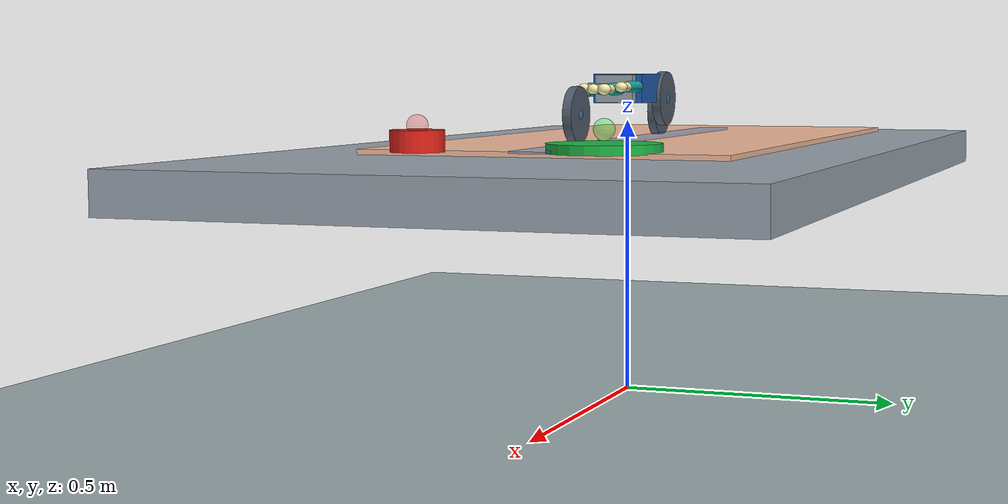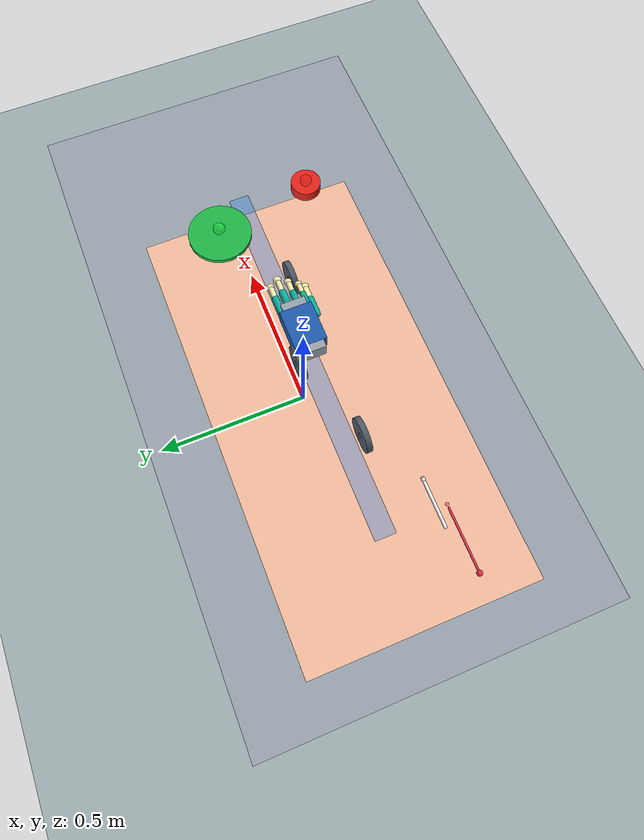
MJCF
<mujoco model="micro_suture_lab_v5">
  <compiler angle="degree" autolimits="true"/>
  <option timestep="0.001" gravity="0 0 -9.81" integrator="implicitfast" cone="elliptic" impratio="3">
    <flag contact="enable" energy="enable" multiccd="enable"/>
  </option>

  <visual>
    <global offwidth="1280" offheight="720"/>
    <quality shadowsize="4096"/>
    <headlight ambient="0.42 0.42 0.42" diffuse="0.72 0.72 0.72" specular="0.25 0.25 0.25"/>
  </visual>

  <asset>
    <texture name="grid" type="2d" builtin="checker" rgb1="0.76 0.80 0.80" rgb2="0.48 0.56 0.58" width="256" height="256"/>
    <material name="floor_mat" texture="grid" texrepeat="6 6" reflectance="0.08"/>
    <material name="steel"  rgba="0.60 0.64 0.68 1" specular="0.55"/>
    <material name="palm"   rgba="0.12 0.36 0.68 1"/>
    <material name="finger" rgba="0.04 0.68 0.62 1"/>
    <material name="pad"    rgba="0.98 0.95 0.68 1"/>
    <material name="needle" rgba="0.92 0.95 0.98 1" specular="0.85"/>
    <material name="thread" rgba="0.94 0.18 0.30 1"/>
    <material name="gel"    rgba="0.96 0.74 0.62 1"/>
    <material name="target" rgba="0.12 0.72 0.28 1"/>
    <material name="alert"  rgba="0.90 0.14 0.10 1"/>
    <material name="ring"   rgba="0.32 0.36 0.42 1"/>
    <material name="zone"   rgba="0.18 0.50 0.90 0.38"/>
  </asset>

  <default>
    <default class="pad">
      <geom condim="6" friction="3.2 0.20 0.10"
            solref="0.002 0.5" solimp="0.99 0.999 0.0005"
            margin="0.0005" gap="0"/>
    </default>
    <default class="finger_link">
      <geom condim="4" friction="2.0 0.05 0.01"
            solref="0.004 1" solimp="0.97 0.995 0.001"/>
    </default>
    <default class="needle_part">
      <geom condim="6" friction="2.8 0.18 0.10"
            solref="0.003 1" solimp="0.97 0.999 0.0005"/>
    </default>
    <default class="thread_part">
      <geom condim="4" friction="1.4 0.05 0.02"
            solref="0.006 1" solimp="0.9  0.98 0.001"/>
    </default>
  </default>

  <worldbody>
    <light pos="0 -0.8 2.2" dir="0.15 0.25 -1" diffuse="0.82 0.82 0.82"/>
    <light pos="-0.8 0.6 1.4" dir="0.6 -0.4 -1" diffuse="0.34 0.37 0.42"/>
    <geom name="floor" type="plane" size="1.7 1.25 0.05" material="floor_mat"/>

    <body name="bench" pos="0 0 0.42">
      <geom name="bench_top"    type="box" size="0.94 0.50 0.035" material="steel"/>
      <geom name="sterile_pad"  type="box" pos="-0.18 0 0.038" size="0.64 0.32 0.006" material="gel"/>
      <geom name="safe_corridor" type="box" pos="-0.03 0.005 0.046" size="0.55 0.030 0.002"
            material="zone" contype="0" conaffinity="0"/>
    </body>

    <body name="entry_hoop"  pos="-0.32 -0.040 0.510">
      <geom name="entry_ring"  type="cylinder" fromto="0 -0.008 0 0 0.008 0" size="0.050" material="ring" contype="0" conaffinity="0"/>
      <site name="entry_site"  pos="0 0 0" size="0.012" rgba="0.1 0.7 1 0.35"/>
    </body>
    <body name="middle_hoop" pos="-0.08  0.045 0.540">
      <geom name="middle_ring" type="cylinder" fromto="0 -0.008 0 0 0.008 0" size="0.050" material="ring" contype="0" conaffinity="0"/>
      <site name="middle_site" pos="0 0 0" size="0.012" rgba="0.1 0.7 1 0.35"/>
    </body>
    <body name="exit_hoop"   pos=" 0.18 -0.035 0.515">
      <geom name="exit_ring"   type="cylinder" fromto="0 -0.008 0 0 0.008 0" size="0.050" material="ring" contype="0" conaffinity="0"/>
      <site name="exit_site"   pos="0 0 0" size="0.012" rgba="0.1 0.7 1 0.35"/>
    </body>

    <body name="target_tray" pos="0.42 0.10 0.470">
      <geom name="target_plate" type="cylinder" size="0.095 0.008" material="target"/>
      <site name="tray_site" pos="0 0 0.030" size="0.018" rgba="0.1 1 0.2 0.35"/>
    </body>

    <body name="verify_button" pos="0.48 -0.20 0.480">
      <joint name="button_slide" type="slide" axis="0 0 -1" range="-0.035 0" damping="1.5" stiffness="50" springref="0"/>
      <geom  name="button_geom"  type="cylinder" size="0.045 0.018" material="alert"/>
      <site  name="button_site"  pos="0 0 0.025" size="0.018" rgba="1 0.1 0.1 0.25"/>
    </body>

    <body name="needle" pos="-0.56 -0.13 0.54">
      <freejoint name="needle_free"/>
      <inertial pos="0 0 0" mass="0.006" diaginertia="6e-7 3e-6 3e-6"/>
      <geom name="needle_shaft" class="needle_part" type="capsule" fromto="-0.060 0 0 0.060 0 0" size="0.0045" material="needle"/>
      <geom name="needle_tip"   class="needle_part" type="sphere"  pos="0.068 0 0" size="0.0060" material="needle"/>
      <site name="needle_tip_site"  pos="0.072 0 0" size="0.005" rgba="1 1 1 0.45"/>
      <site name="needle_grip_site" pos="0.000 0 0" size="0.005" rgba="0 1 1 0.0"/>
    </body>

    <body name="suture_tail" pos="-0.66 -0.16 0.535">
      <freejoint name="thread_free"/>
      <inertial pos="0 0 0" mass="0.004" diaginertia="3e-7 2e-6 2e-6"/>
      <geom name="thread_segment" class="thread_part" type="capsule" fromto="-0.08 0 0 0.08 0 0" size="0.0030" material="thread"/>
      <geom name="thread_bead"    class="thread_part" type="sphere"  pos="-0.09 0 0" size="0.0080" material="thread"/>
      <site name="thread_site"    pos="0.090 0 0" size="0.005" rgba="1 0 0 0.35"/>
    </body>

    <body name="gantry" pos="0 0 0.56">
      <joint name="gantry_x" type="slide" axis="1 0 0" range="-0.72 0.58" damping="8"/>
      <joint name="gantry_y" type="slide" axis="0 1 0" range="-0.32 0.32" damping="8"/>
      <joint name="gantry_z" type="slide" axis="0 0 1" range="-0.12 0.22" damping="8"/>
      <geom  name="gantry_rail" type="box" size="0.08 0.035 0.025" material="steel"/>

      <body name="palm" pos="0 0 0">
        <joint name="wrist_yaw" type="hinge" axis="0 0 1" range="-95 95" damping="1.2"/>
        <geom  name="palm_geom" class="finger_link" type="box" size="0.058 0.046 0.026" material="palm"/>
        <site  name="palm_site"      pos="0.070 0  0"     size="0.008" rgba="0 1 1 0.45"/>
        <site  name="palm_grip_site" pos="0.085 0 -0.012" size="0.005" rgba="1 1 0 0.0"/>

        <body name="thumb" pos="0.030 -0.052 -0.004">
          <joint name="thumb_opp" type="hinge" axis="0 0 1" range="-68 50" damping="0.6"/>
          <geom name="thumb_prox" class="finger_link" type="capsule" fromto="0 0 0 0.048 0 0" size="0.011" material="finger"/>
          <body name="thumb_tip" pos="0.048 0 0">
            <joint name="thumb_distal" type="hinge" axis="0 0 1" range="-8 72" damping="0.4"/>
            <geom name="thumb_distal_geom" class="finger_link" type="capsule" fromto="0 0 0 0.040 0 0" size="0.009" material="pad"/>
            <geom name="thumb_pad" class="pad" type="ellipsoid" pos="0.042 0 0" size="0.010 0.012 0.010" material="pad"/>
            <site name="thumb_tip_site" pos="0.042 0 0" size="0.008" rgba="0 1 0 0.3"/>
          </body>
        </body>

        <body name="index_finger" pos="0.058  0.038 0.004">
          <joint name="index_flex" type="hinge" axis="0 0 1" range="-15 78" damping="0.6"/>
          <geom name="index_prox" class="finger_link" type="capsule" fromto="0 0 0 0.052 0 0" size="0.010" material="finger"/>
          <body name="index_tip" pos="0.052 0 0">
            <joint name="index_distal" type="hinge" axis="0 0 1" range="-5 82" damping="0.4"/>
            <geom name="index_distal_geom" class="finger_link" type="capsule" fromto="0 0 0 0.038 0 0" size="0.008" material="pad"/>
            <geom name="index_pad" class="pad" type="ellipsoid" pos="0.040 0 0" size="0.009 0.011 0.009" material="pad"/>
            <site name="index_tip_site" pos="0.040 0 0" size="0.008" rgba="0 1 0 0.3"/>
          </body>
        </body>

        <body name="middle_finger" pos="0.064  0.012 0.000">
          <joint name="middle_flex" type="hinge" axis="0 0 1" range="-10 84" damping="0.6"/>
          <geom name="middle_prox" class="finger_link" type="capsule" fromto="0 0 0 0.058 0 0" size="0.011" material="finger"/>
          <body name="middle_tip" pos="0.058 0 0">
            <joint name="middle_distal" type="hinge" axis="0 0 1" range="-5 84" damping="0.4"/>
            <geom name="middle_distal_geom" class="finger_link" type="capsule" fromto="0 0 0 0.042 0 0" size="0.008" material="pad"/>
            <geom name="middle_pad" class="pad" type="ellipsoid" pos="0.044 0 0" size="0.010 0.012 0.010" material="pad"/>
            <site name="middle_tip_site" pos="0.044 0 0" size="0.008" rgba="0 1 0 0.3"/>
          </body>
        </body>

        <body name="ring_finger" pos="0.060 -0.014 0.000">
          <joint name="ring_flex" type="hinge" axis="0 0 1" range="-10 78" damping="0.6"/>
          <geom name="ring_prox" class="finger_link" type="capsule" fromto="0 0 0 0.052 0 0" size="0.010" material="finger"/>
          <body name="ring_tip" pos="0.052 0 0">
            <joint name="ring_distal" type="hinge" axis="0 0 1" range="-5 78" damping="0.4"/>
            <geom name="ring_distal_geom" class="finger_link" type="capsule" fromto="0 0 0 0.036 0 0" size="0.008" material="pad"/>
            <geom name="ring_pad" class="pad" type="ellipsoid" pos="0.038 0 0" size="0.009 0.011 0.009" material="pad"/>
            <site name="ring_tip_site" pos="0.038 0 0" size="0.008" rgba="0 1 0 0.3"/>
          </body>
        </body>

        <body name="little_finger" pos="0.052 -0.038 0.002">
          <joint name="little_flex" type="hinge" axis="0 0 1" range="-12 72" damping="0.6"/>
          <geom name="little_prox" class="finger_link" type="capsule" fromto="0 0 0 0.046 0 0" size="0.009" material="finger"/>
          <body name="little_tip" pos="0.046 0 0">
            <joint name="little_distal" type="hinge" axis="0 0 1" range="-5 72" damping="0.4"/>
            <geom name="little_distal_geom" class="finger_link" type="capsule" fromto="0 0 0 0.032 0 0" size="0.007" material="pad"/>
            <geom name="little_pad" class="pad" type="ellipsoid" pos="0.034 0 0" size="0.008 0.010 0.008" material="pad"/>
            <site name="little_tip_site" pos="0.034 0 0" size="0.008" rgba="0 1 0 0.3"/>
          </body>
        </body>
      </body>
    </body>
  </worldbody>

  <contact>
    <!-- High-fidelity pad-needle contact pairs (override defaults if needed) -->
    <pair geom1="thumb_pad"  geom2="needle_shaft" condim="6" friction="3.5 0.22 0.12"/>
    <pair geom1="index_pad"  geom2="needle_shaft" condim="6" friction="3.5 0.22 0.12"/>
    <pair geom1="middle_pad" geom2="needle_shaft" condim="6" friction="3.5 0.22 0.12"/>
    <pair geom1="thumb_pad"  geom2="needle_tip"   condim="6" friction="3.5 0.22 0.12"/>
    <pair geom1="index_pad"  geom2="needle_tip"   condim="6" friction="3.5 0.22 0.12"/>
    <pair geom1="middle_pad" geom2="needle_tip"   condim="6" friction="3.5 0.22 0.12"/>
    <pair geom1="thread_bead" geom2="target_plate" condim="4" friction="1.6 0.05 0.02"/>
  </contact>

  <equality>
    <!-- Inactive until fingertip contact confirms the needle grasp. -->
    <connect name="needle_grasp_assist" body1="palm" body2="needle"
             anchor="-0.560 -0.130 0.469" active="false" solref="0.006 1" solimp="0.92 0.99 0.001"/>
    <!-- Thread attachment to needle once it crosses the entry hoop. Not used for the needle grasp. -->
    <connect name="thread_attach" body1="needle" body2="suture_tail"
             anchor="-0.060 0 0" active="false" solref="0.01 1" solimp="0.9 0.98 0.001"/>
  </equality>

  <sensor>
    <framepos name="palm_pos"          objtype="site" objname="palm_site"/>
    <framepos name="palm_grip_pos"     objtype="site" objname="palm_grip_site"/>
    <framepos name="needle_tip_pos"    objtype="site" objname="needle_tip_site"/>
    <framepos name="needle_grip_pos"   objtype="site" objname="needle_grip_site"/>
    <framepos name="thread_pos"        objtype="site" objname="thread_site"/>
    <framepos name="entry_target_pos"  objtype="site" objname="entry_site"/>
    <framepos name="middle_target_pos" objtype="site" objname="middle_site"/>
    <framepos name="exit_target_pos"   objtype="site" objname="exit_site"/>
    <framepos name="tray_pos"          objtype="site" objname="tray_site"/>
    <jointpos name="button_depth"      joint="button_slide"/>
    <jointpos name="wrist_yaw_pos"     joint="wrist_yaw"/>
    <jointpos name="thumb_opp_pos"     joint="thumb_opp"/>
    <jointpos name="index_flex_pos"    joint="index_flex"/>
    <jointpos name="middle_flex_pos"   joint="middle_flex"/>
    <jointpos name="ring_flex_pos"     joint="ring_flex"/>
    <jointpos name="little_flex_pos"   joint="little_flex"/>
    <touch    name="thumb_touch"  site="thumb_tip_site"/>
    <touch    name="index_touch"  site="index_tip_site"/>
    <touch    name="middle_touch" site="middle_tip_site"/>
    <touch    name="ring_touch"   site="ring_tip_site"/>
    <touch    name="little_touch" site="little_tip_site"/>
  </sensor>

  <actuator>
    <position name="x_servo"      joint="gantry_x"     kp="600" kv="40" ctrlrange="-0.72 0.58"/>
    <position name="y_servo"      joint="gantry_y"     kp="600" kv="40" ctrlrange="-0.32 0.32"/>
    <position name="z_servo"      joint="gantry_z"     kp="600" kv="40" ctrlrange="-0.12 0.22"/>
    <position name="wrist_servo"  joint="wrist_yaw"    kp="80"  kv="4"  ctrlrange="-1.65 1.65"/>
    <position name="thumb_opp_servo"     joint="thumb_opp"     kp="55" kv="2.4" ctrlrange="-1.18 0.87"/>
    <position name="thumb_distal_servo"  joint="thumb_distal"  kp="45" kv="1.8" ctrlrange="-0.14 1.26"/>
    <position name="index_flex_servo"    joint="index_flex"    kp="55" kv="2.4" ctrlrange="-0.26 1.36"/>
    <position name="index_distal_servo"  joint="index_distal"  kp="45" kv="1.8" ctrlrange="-0.09 1.43"/>
    <position name="middle_flex_servo"   joint="middle_flex"   kp="55" kv="2.4" ctrlrange="-0.18 1.47"/>
    <position name="middle_distal_servo" joint="middle_distal" kp="45" kv="1.8" ctrlrange="-0.09 1.47"/>
    <position name="ring_flex_servo"     joint="ring_flex"     kp="48" kv="2.2" ctrlrange="-0.18 1.36"/>
    <position name="ring_distal_servo"   joint="ring_distal"   kp="40" kv="1.8" ctrlrange="-0.09 1.36"/>
    <position name="little_flex_servo"   joint="little_flex"   kp="44" kv="2.0" ctrlrange="-0.21 1.26"/>
    <position name="little_distal_servo" joint="little_distal" kp="38" kv="1.6" ctrlrange="-0.09 1.26"/>
    <position name="button_servo"        joint="button_slide"  kp="150" kv="8"  ctrlrange="-0.035 0"/>
  </actuator>
</mujoco>
